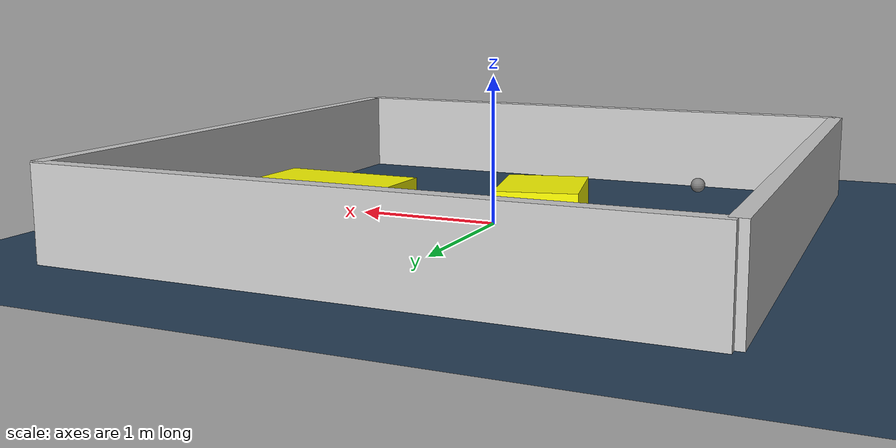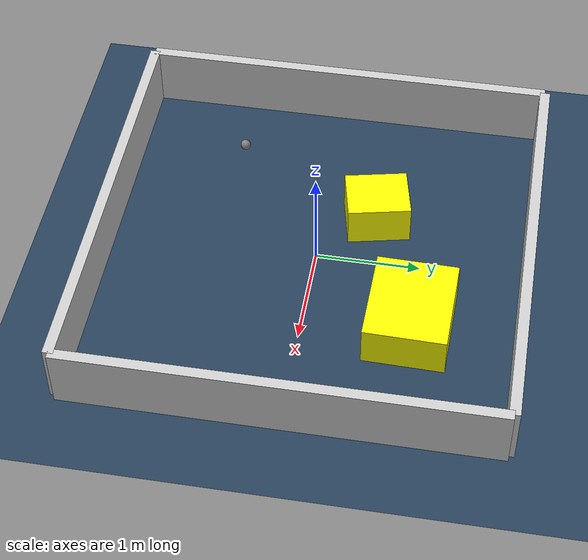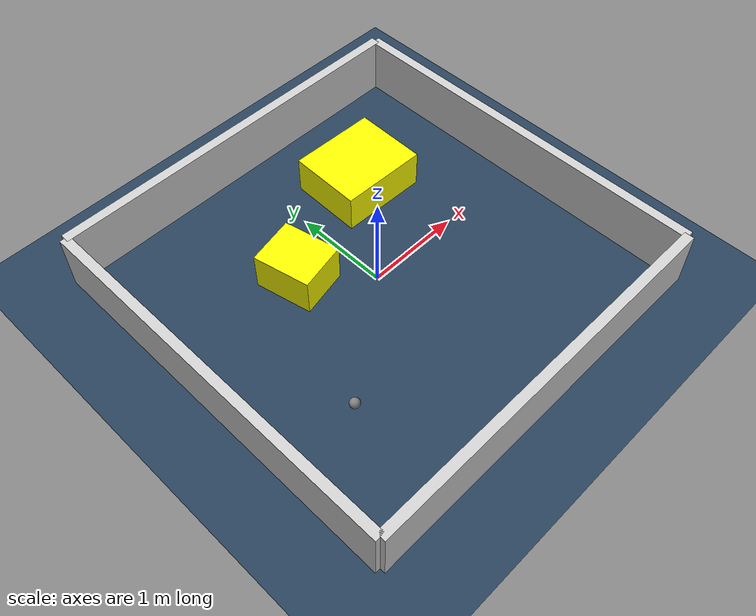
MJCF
<?xml version="1.0" ?>
<mujoco model="generated_environment">
  <option timestep="0.01" integrator="RK4" cone="elliptic"/>
  <default>
    <geom density="1"/>
  </default>
  <asset>
    <texture builtin="gradient" height="3072" rgb1="0.3 0.5 0.7" rgb2="0 0 0" type="skybox" width="512"/>
    <texture builtin="checker" height="300" mark="edge" markrgb="0.8 0.8 0.8" name="groundplane" rgb1="0.2 0.3 0.4" rgb2="0.1 0.2 0.3" type="2d" width="300"/>
    <material name="groundplane" reflectance="0.2" texrepeat="5 5" texture="groundplane" texuniform="true"/>
    <material name="robot" rgba="0.0 1.0 0.0 1"/>
  </asset>
  <worldbody>
    <light dir="0 0 -1" directional="true" pos="0 0 1.5"/>
    <geom condim="4" friction="1.0 0.005 0.001" material="groundplane" name="floor" size="0 0 0.05" type="plane"/>
    <body name="walls">
      <geom name="wall_1" condim="4" pos="-2.0 0.0 0.3" rgba="0.800000011920929 0.800000011920929 0.800000011920929 1.0" size="0.05 2.0 0.3" type="box"/>
      <geom name="wall_2" condim="4" pos="2.0 0.0 0.3" rgba="0.800000011920929 0.800000011920929 0.800000011920929 1.0" size="0.05 2.0 0.3" type="box"/>
      <geom name="wall_3" condim="4" pos="0.0 -2.0 0.3" rgba="0.800000011920929 0.800000011920929 0.800000011920929 1.0" size="2.0 0.05 0.3" type="box"/>
      <geom name="wall_4" condim="4" pos="0.0 2.0 0.3" rgba="0.800000011920929 0.800000011920929 0.800000011920929 1.0" size="2.0 0.05 0.3" type="box"/>
    </body>
    <body name="robot">
      <joint name="joint_x" type="slide" pos="0 0 0" axis="1 0 0"/>
      <joint name="joint_y" type="slide" pos="0 0 0" axis="0 1 0"/>
      <geom name="robot" type="sphere" pos="-1.1922036423020397 -0.9094578194801335 0.2" size="0.05" mass="5." friction="1.0 0.005 0.0001" condim="4"/>
      <site name="sensor_ball"/>
    </body>
    <body name="obstacle_1_movable">
      <geom name="obstacle_1_movable" condim="4" pos="0.7292979844940906 0.9925392557388566 0.2" euler="0 0 358.73578088906834" friction="1.0 0.005 0.001" rgba="1 1 0 1" size="0.4578769284093922 0.38185417167885916 0.2" type="box" mass="0.1"/>
      <joint type="free"/>
    </body>
    <body name="obstacle_2_movable">
      <geom name="obstacle_2_movable" condim="4" pos="-0.5411437078769341 0.5130908733349182 0.2" euler="0 0 12.313469528327548" friction="1.0 0.005 0.001" rgba="1 1 0 1" size="0.2537360380338137 0.29917450524597766 0.2" type="box" mass="0.1"/>
      <joint type="free"/>
    </body>
  </worldbody>
  <actuator>
    <motor name="actuator_x" joint="joint_x" gear="1" ctrlrange="-1 1"/>
    <motor name="actuator_y" joint="joint_y" gear="1" ctrlrange="-1 1"/>
  </actuator>
</mujoco>
